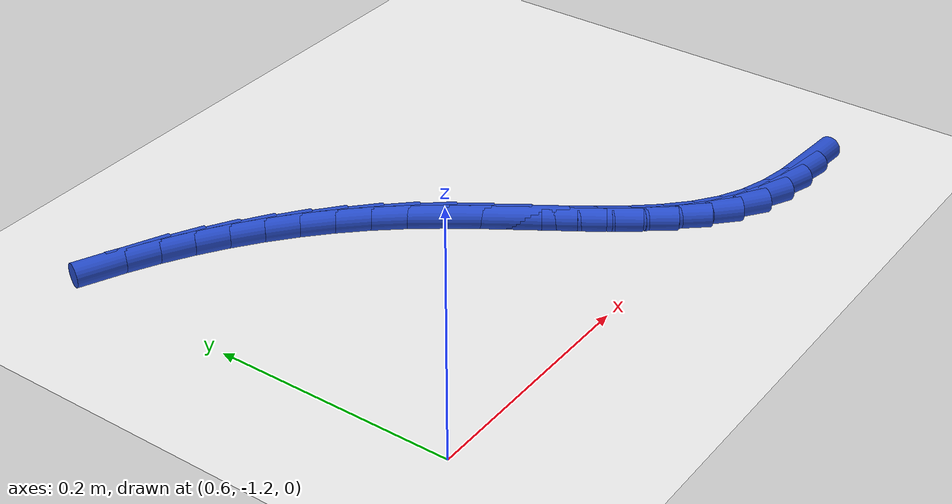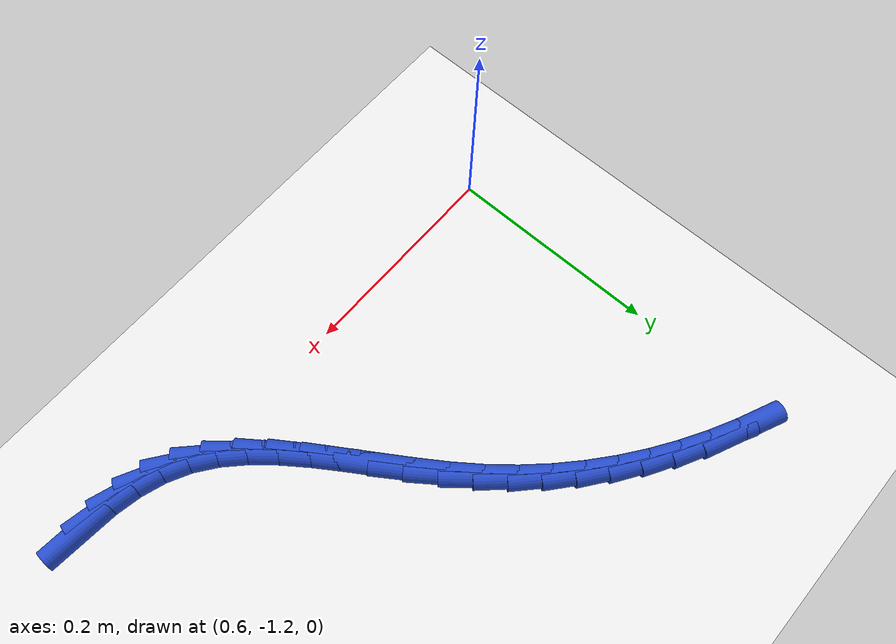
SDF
<sdf version="1.6">
 <world name="default">
  <model name="ground_plane">
   <static>1</static>
   <link name="link">
    <collision name="collision">
     <geometry><plane><normal>0 0 1</normal><size>100 100</size></plane></geometry>
     <surface><friction><ode><mu>100</mu><mu2>50</mu2></ode></friction></surface>
    </collision>
    <visual name="visual">
     <cast_shadows>0</cast_shadows>
     <geometry><plane><normal>0 0 1</normal><size>100 100</size></plane></geometry>
     <material>
      <script><uri>file://media/materials/scripts/gazebo.material</uri><name>Gazebo/WhiteGlow</name></script>
     </material>
    </visual>
   </link>
  </model>
  <model name="line">
   <link name="link_197">
    <pose>1.0598051373286357 -1.2290873910246043 0.01 0 1.57 -0.07616166000276063</pose>
    <collision name="collision">
     <geometry><cylinder><radius>0.01</radius><length>0.08</length></cylinder></geometry>
    </collision>
    <visual name="visual">
     <material>
      <script><name>Gazebo/Blue</name><uri>file://media/materials/scripts/gazebo.material</uri></script>
     </material>
     <geometry><cylinder><radius>0.01</radius><length>0.08</length></cylinder></geometry>
    </visual>
   </link>
   <link name="link_198">
    <pose>1.0336623267573437 -1.2270924524026015 0.01 0 1.57 -0.18428143693841367</pose>
    <collision name="collision">
     <geometry><cylinder><radius>0.01</radius><length>0.08</length></cylinder></geometry>
    </collision>
    <visual name="visual">
     <material>
      <script><name>Gazebo/Blue</name><uri>file://media/materials/scripts/gazebo.material</uri></script>
     </material>
     <geometry><cylinder><radius>0.01</radius><length>0.08</length></cylinder></geometry>
    </visual>
   </link>
   <link name="link_199">
    <pose>1.0088318387641086 -1.2224641434824055 0.01 0 1.57 -0.3164317316218491</pose>
    <collision name="collision">
     <geometry><cylinder><radius>0.01</radius><length>0.08</length></cylinder></geometry>
    </collision>
    <visual name="visual">
     <material>
      <script><name>Gazebo/Blue</name><uri>file://media/materials/scripts/gazebo.material</uri></script>
     </material>
     <geometry><cylinder><radius>0.01</radius><length>0.08</length></cylinder></geometry>
    </visual>
   </link>
   <link name="link_200">
    <pose>0.9854802406223409 -1.2148180378398612 0.01 0 1.57 -0.470818039787113</pose>
    <collision name="collision">
     <geometry><cylinder><radius>0.01</radius><length>0.08</length></cylinder></geometry>
    </collision>
    <visual name="visual">
     <material>
      <script><name>Gazebo/Blue</name><uri>file://media/materials/scripts/gazebo.material</uri></script>
     </material>
     <geometry><cylinder><radius>0.01</radius><length>0.08</length></cylinder></geometry>
    </visual>
   </link>
   <link name="link_201">
    <pose>0.9637740988248592 -1.2037697105743577 0.01 0 1.57 -0.632989552014096</pose>
    <collision name="collision">
     <geometry><cylinder><radius>0.01</radius><length>0.08</length></cylinder></geometry>
    </collision>
    <visual name="visual">
     <material>
      <script><name>Gazebo/Blue</name><uri>file://media/materials/scripts/gazebo.material</uri></script>
     </material>
     <geometry><cylinder><radius>0.01</radius><length>0.08</length></cylinder></geometry>
    </visual>
   </link>
   <link name="link_202">
    <pose>0.9437911364164951 -1.1891081397567684 0.01 0 1.57 -0.766666306751412</pose>
    <collision name="collision">
     <geometry><cylinder><radius>0.01</radius><length>0.08</length></cylinder></geometry>
    </collision>
    <visual name="visual">
     <material>
      <script><name>Gazebo/Blue</name><uri>file://media/materials/scripts/gazebo.material</uri></script>
     </material>
     <geometry><cylinder><radius>0.01</radius><length>0.08</length></cylinder></geometry>
    </visual>
   </link>
   <link name="link_203">
    <pose>0.9252754589606474 -1.1712734517860721 0.01 0 1.57 -0.8654512828245063</pose>
    <collision name="collision">
     <geometry><cylinder><radius>0.01</radius><length>0.08</length></cylinder></geometry>
    </collision>
    <visual name="visual">
     <material>
      <script><name>Gazebo/Blue</name><uri>file://media/materials/scripts/gazebo.material</uri></script>
     </material>
     <geometry><cylinder><radius>0.01</radius><length>0.08</length></cylinder></geometry>
    </visual>
   </link>
   <link name="link_204">
    <pose>0.9078928775818937 -1.1508585866749639 0.01 0 1.57 -0.933549539176989</pose>
    <collision name="collision">
     <geometry><cylinder><radius>0.01</radius><length>0.08</length></cylinder></geometry>
    </collision>
    <visual name="visual">
     <material>
      <script><name>Gazebo/Blue</name><uri>file://media/materials/scripts/gazebo.material</uri></script>
     </material>
     <geometry><cylinder><radius>0.01</radius><length>0.08</length></cylinder></geometry>
    </visual>
   </link>
   <link name="link_205">
    <pose>0.8913092034048149 -1.1284564844361415 0.01 0 1.57 -0.975420604371118</pose>
    <collision name="collision">
     <geometry><cylinder><radius>0.01</radius><length>0.08</length></cylinder></geometry>
    </collision>
    <visual name="visual">
     <material>
      <script><name>Gazebo/Blue</name><uri>file://media/materials/scripts/gazebo.material</uri></script>
     </material>
     <geometry><cylinder><radius>0.01</radius><length>0.08</length></cylinder></geometry>
    </visual>
   </link>
   <link name="link_206">
    <pose>0.8751902475539889 -1.1046600850822994 0.01 0 1.57 -0.9944244013092606</pose>
    <collision name="collision">
     <geometry><cylinder><radius>0.01</radius><length>0.08</length></cylinder></geometry>
    </collision>
    <visual name="visual">
     <material>
      <script><name>Gazebo/Blue</name><uri>file://media/materials/scripts/gazebo.material</uri></script>
     </material>
     <geometry><cylinder><radius>0.01</radius><length>0.08</length></cylinder></geometry>
    </visual>
   </link>
   <link name="link_207">
    <pose>0.8592018211539942 -1.080062328626134 0.01 0 1.57 -0.9924943880505293</pose>
    <collision name="collision">
     <geometry><cylinder><radius>0.01</radius><length>0.08</length></cylinder></geometry>
    </collision>
    <visual name="visual">
     <material>
      <script><name>Gazebo/Blue</name><uri>file://media/materials/scripts/gazebo.material</uri></script>
     </material>
     <geometry><cylinder><radius>0.01</radius><length>0.08</length></cylinder></geometry>
    </visual>
   </link>
   <link name="link_208">
    <pose>0.8430097353294104 -1.0552561550803414 0.01 0 1.57 -0.9701778229412839</pose>
    <collision name="collision">
     <geometry><cylinder><radius>0.01</radius><length>0.08</length></cylinder></geometry>
    </collision>
    <visual name="visual">
     <material>
      <script><name>Gazebo/Blue</name><uri>file://media/materials/scripts/gazebo.material</uri></script>
     </material>
     <geometry><cylinder><radius>0.01</radius><length>0.08</length></cylinder></geometry>
    </visual>
   </link>
   <link name="link_209">
    <pose>0.8262798012048164 -1.0308345044576177 0.01 0 1.57 -0.9268762793934381</pose>
    <collision name="collision">
     <geometry><cylinder><radius>0.01</radius><length>0.08</length></cylinder></geometry>
    </collision>
    <visual name="visual">
     <material>
      <script><name>Gazebo/Blue</name><uri>file://media/materials/scripts/gazebo.material</uri></script>
     </material>
     <geometry><cylinder><radius>0.01</radius><length>0.08</length></cylinder></geometry>
    </visual>
   </link>
   <link name="link_210">
    <pose>0.8086794322689947 -1.0073878163156471 0.01 0 1.57 -0.8690809734509546</pose>
    <collision name="collision">
     <geometry><cylinder><radius>0.01</radius><length>0.08</length></cylinder></geometry>
    </collision>
    <visual name="visual">
     <material>
      <script><name>Gazebo/Blue</name><uri>file://media/materials/scripts/gazebo.material</uri></script>
     </material>
     <geometry><cylinder><radius>0.01</radius><length>0.08</length></cylinder></geometry>
    </visual>
   </link>
   <link name="link_211">
    <pose>0.7900091974830878 -0.9852987439501955 0.01 0 1.57 -0.8101573125268532</pose>
    <collision name="collision">
     <geometry><cylinder><radius>0.01</radius><length>0.08</length></cylinder></geometry>
    </collision>
    <visual name="visual">
     <material>
      <script><name>Gazebo/Blue</name><uri>file://media/materials/scripts/gazebo.material</uri></script>
     </material>
     <geometry><cylinder><radius>0.01</radius><length>0.08</length></cylinder></geometry>
    </visual>
   </link>
   <link name="link_212">
    <pose>0.7703007336786598 -0.9645893641955889 0.01 0 1.57 -0.7517314665244668</pose>
    <collision name="collision">
     <geometry><cylinder><radius>0.01</radius><length>0.08</length></cylinder></geometry>
    </collision>
    <visual name="visual">
     <material>
      <script><name>Gazebo/Blue</name><uri>file://media/materials/scripts/gazebo.material</uri></script>
     </material>
     <geometry><cylinder><radius>0.01</radius><length>0.08</length></cylinder></geometry>
    </visual>
   </link>
   <link name="link_213">
    <pose>0.749608747560324 -0.9452457538435052 0.01 0 1.57 -0.6940398915919836</pose>
    <collision name="collision">
     <geometry><cylinder><radius>0.01</radius><length>0.08</length></cylinder></geometry>
    </collision>
    <visual name="visual">
     <material>
      <script><name>Gazebo/Blue</name><uri>file://media/materials/scripts/gazebo.material</uri></script>
     </material>
     <geometry><cylinder><radius>0.01</radius><length>0.08</length></cylinder></geometry>
    </visual>
   </link>
   <link name="link_214">
    <pose>0.7279879458326949 -0.9272539896856228 0.01 0 1.57 -0.6372888122280054</pose>
    <collision name="collision">
     <geometry><cylinder><radius>0.01</radius><length>0.08</length></cylinder></geometry>
    </collision>
    <visual name="visual">
     <material>
      <script><name>Gazebo/Blue</name><uri>file://media/materials/scripts/gazebo.material</uri></script>
     </material>
     <geometry><cylinder><radius>0.01</radius><length>0.08</length></cylinder></geometry>
    </visual>
   </link>
   <link name="link_215">
    <pose>0.7054930352003859 -0.9106001485136197 0.01 0 1.57 -0.5816499571055288</pose>
    <collision name="collision">
     <geometry><cylinder><radius>0.01</radius><length>0.08</length></cylinder></geometry>
    </collision>
    <visual name="visual">
     <material>
      <script><name>Gazebo/Blue</name><uri>file://media/materials/scripts/gazebo.material</uri></script>
     </material>
     <geometry><cylinder><radius>0.01</radius><length>0.08</length></cylinder></geometry>
    </visual>
   </link>
   <link name="link_216">
    <pose>0.68217872236801 -0.8952703071191737 0.01 0 1.57 -0.5272584025040056</pose>
    <collision name="collision">
     <geometry><cylinder><radius>0.01</radius><length>0.08</length></cylinder></geometry>
    </collision>
    <visual name="visual">
     <material>
      <script><name>Gazebo/Blue</name><uri>file://media/materials/scripts/gazebo.material</uri></script>
     </material>
     <geometry><cylinder><radius>0.01</radius><length>0.08</length></cylinder></geometry>
    </visual>
   </link>
   <link name="link_217">
    <pose>0.6580997140401813 -0.8812505422939625 0.01 0 1.57 -0.4742123659319055</pose>
    <collision name="collision">
     <geometry><cylinder><radius>0.01</radius><length>0.08</length></cylinder></geometry>
    </collision>
    <visual name="visual">
     <material>
      <script><name>Gazebo/Blue</name><uri>file://media/materials/scripts/gazebo.material</uri></script>
     </material>
     <geometry><cylinder><radius>0.01</radius><length>0.08</length></cylinder></geometry>
    </visual>
   </link>
   <link name="link_218">
    <pose>0.6333107169215128 -0.8685269308296639 0.01 0 1.57 -0.4225746348578171</pose>
    <collision name="collision">
     <geometry><cylinder><radius>0.01</radius><length>0.08</length></cylinder></geometry>
    </collision>
    <visual name="visual">
     <material>
      <script><name>Gazebo/Blue</name><uri>file://media/materials/scripts/gazebo.material</uri></script>
     </material>
     <geometry><cylinder><radius>0.01</radius><length>0.08</length></cylinder></geometry>
    </visual>
   </link>
  </model>
 </world>
</sdf>
